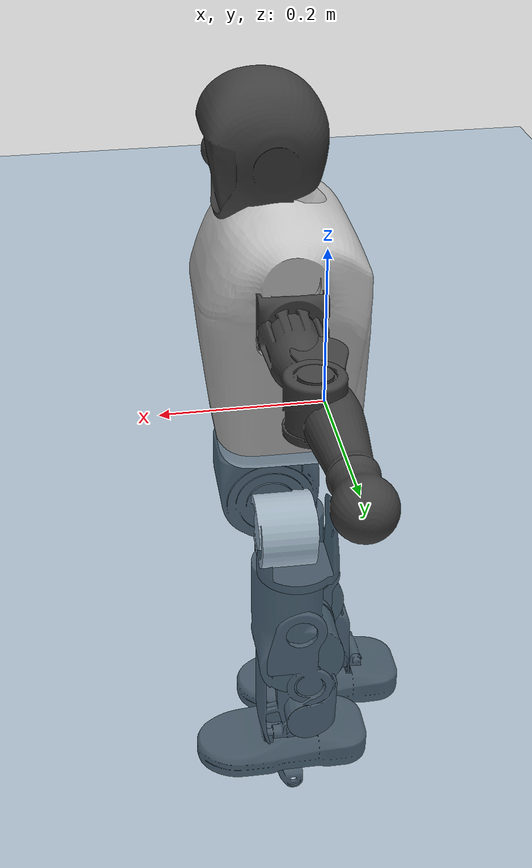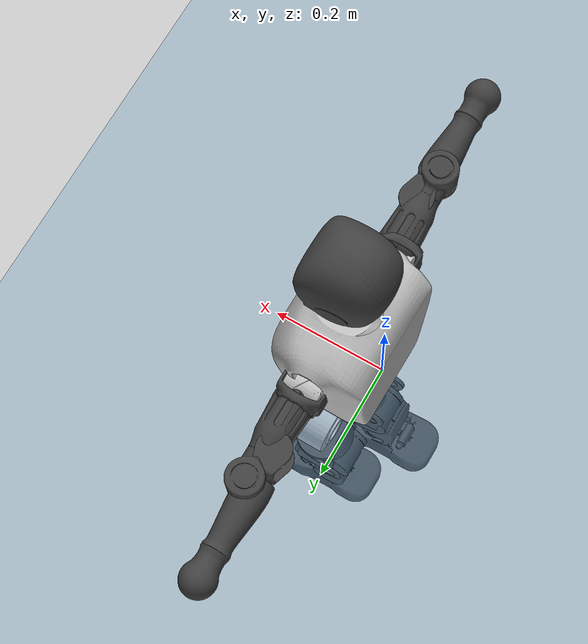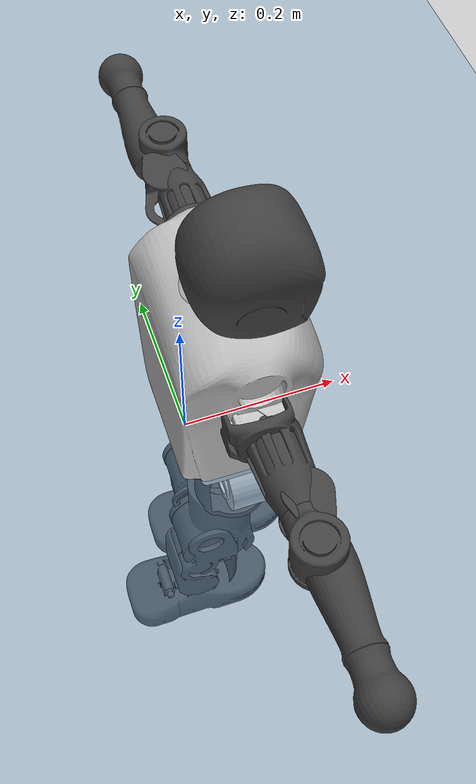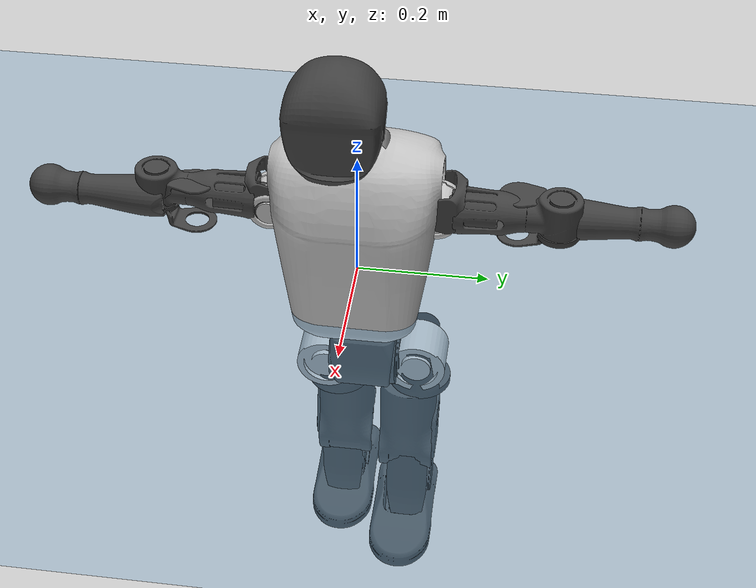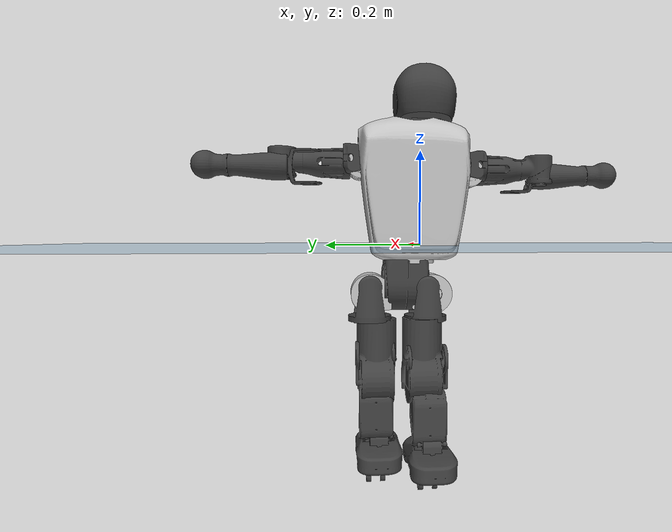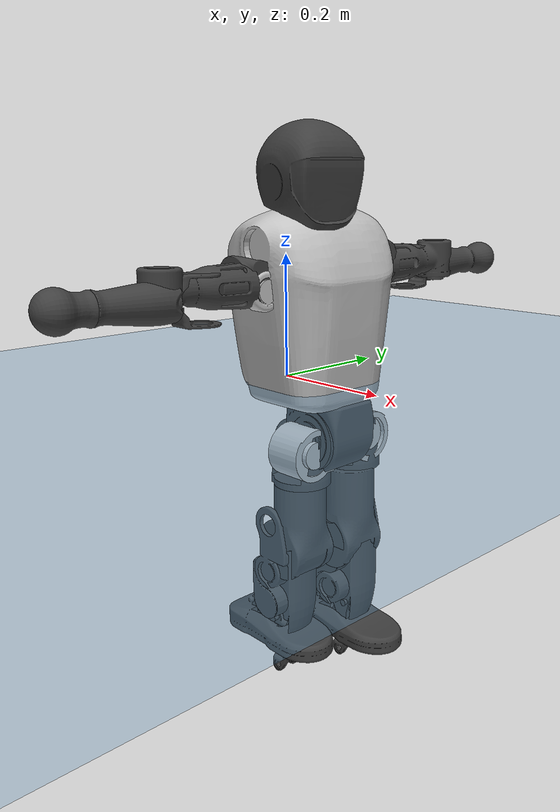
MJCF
<mujoco model="T1">
  <compiler angle="radian" assetdir="assets" balanceinertia="true" inertiafromgeom="false"/>

  <option timestep="0.005" density="1.2" viscosity="2e-05"/>

  <size nkey="1"/>

  <visual>
    <quality shadowsize="8192"/>
    <map shadowclip="0.5"/>
  </visual>

  <default>
    <default class="/">
      <joint armature="0.01" damping="0.01" frictionloss="0.1"/>
      <geom contype="0" conaffinity="0" group="1" solref="-1000 -80"/>
      <site size="0.01 0.005 0.005" group="5"/>
      <general forcelimited="true" biastype="affine" gainprm="25" biasprm="0 -25 -0.6"/>
      <default class="t1">
        <geom rgba="0.25 0.25 0.25 1"/>
        <default class="visual">
          <geom type="mesh" group="2"/>
        </default>
        <default class="collision">
          <geom group="3"/>
        </default>
        <default class="foot">
          <geom size="0.1115 0.05 0.015" type="box" condim="6" group="4" priority="1" solimp="0.015 1 0.015"/>
        </default>
        <default class="reward_collision_sphere">
          <geom group="5" rgba="1 0 0 1"/>
        </default>
      </default>
    </default>
  </default>

  <asset>
    <texture type="skybox" colorspace="auto" name="//unnamed_texture_0" builtin="gradient" rgb1="0.95 0.95 0.95" rgb2="0.95 0.95 0.95" width="100" height="600"/>
    <texture type="2d" colorspace="auto" name="texplane" builtin="checker" rgb1="0.345 0.575 0.748" rgb2="0.345 0.575 0.748" markrgb="1 1 1" width="512" height="512"/>
    <material name="MatPlane" class="/" texture="texplane" texuniform="true" texrepeat="2 2" specular="0.9"/>
    <mesh name="Trunk" class="/" file="Trunk.stl"/>
    <mesh name="H1" class="/" file="H1.stl"/>
    <mesh name="H2" class="/" file="H2.stl"/>
    <mesh name="AL1" class="/" file="AL1.stl"/>
    <mesh name="AL2" class="/" file="AL2.stl"/>
    <mesh name="AL3" class="/" file="AL3.stl"/>
    <mesh name="left_hand_link" class="/" file="left_hand_link.stl"/>
    <mesh name="AR1" class="/" file="AR1.stl"/>
    <mesh name="AR2" class="/" file="AR2.stl"/>
    <mesh name="AR3" class="/" file="AR3.stl"/>
    <mesh name="right_hand_link" class="/" file="right_hand_link.stl"/>
    <mesh name="Waist" class="/" file="Waist.stl"/>
    <mesh name="Hip_Pitch_Left" class="/" file="Hip_Pitch_Left.stl"/>
    <mesh name="Hip_Roll_Left" class="/" file="Hip_Roll_Left.stl"/>
    <mesh name="Hip_Yaw_Left" class="/" file="Hip_Yaw_Left.stl"/>
    <mesh name="Shank_Left" class="/" file="Shank_Left.stl"/>
    <mesh name="Ankle_Cross_Left" class="/" file="Ankle_Cross_Left.stl"/>
    <mesh name="left_foot_link" class="/" file="left_foot_link.stl"/>
    <mesh name="Hip_Pitch_Right" class="/" file="Hip_Pitch_Right.stl"/>
    <mesh name="Hip_Roll_Right" class="/" file="Hip_Roll_Right.stl"/>
    <mesh name="Hip_Yaw_Right" class="/" file="Hip_Yaw_Right.stl"/>
    <mesh name="Shank_Right" class="/" file="Shank_Right.stl"/>
    <mesh name="Ankle_Cross_Right" class="/" file="Ankle_Cross_Right.stl"/>
    <mesh name="right_foot_link" class="/" file="right_foot_link.stl"/>
  </asset>

  <worldbody>
    <geom name="floor" class="/" size="100 100 0.125" type="plane" group="0" material="MatPlane"/>
    <light name="toplight_shadow" class="/" pos="0 0 5" dir="0.0990148 0.0990148 -0.990148" type="directional" ambient="0.04 0.04 0.04" diffuse="0.55 0.55 0.55" specular="0.12 0.12 0.12"/>
    <light name="toplight_fill" class="/" pos="0 0 5" dir="0.0990148 0.0990148 -0.990148" type="directional" castshadow="false" ambient="0.04 0.04 0.04" diffuse="0.3 0.3 0.3" specular="0.08 0.08 0.08"/>
    <body name="trunk" childclass="t1" pos="0.0026331 0.00974469 0.00177452" quat="0.99997 0.00357358 -0.00340726 -0.00600023">
      <inertial pos="0.0669811 0.0134119 0.0841499" quat="0.999747 0.00966475 -0.0199543 0.0038396" mass="6.4405" diaginertia="0.0857829 0.0119634 0.0118469"/>
      <joint name="//unnamed_joint_0" type="free" armature="0" damping="0" frictionloss="0"/>
      <geom name="//unnamed_geom_1" class="visual" rgba="0.76 0.76 0.76 1" mesh="Trunk"/>
      <geom name="//unnamed_geom_2" class="collision" size="0.0592901 0.0790535 0.11858" pos="0.0588676 0 0.0854175" type="box"/>
      <geom name="//unnamed_geom_3" class="reward_collision_sphere" size="0.0909115" pos="0.0588676 0 0.0711812"/>
      <geom name="//unnamed_geom_4" class="reward_collision_sphere" size="0.011858" pos="0.0588676 0.0576865 0"/>
      <geom name="//unnamed_geom_5" class="reward_collision_sphere" size="0.011858" pos="0.0588676 -0.0576865 0"/>
      <geom name="//unnamed_geom_6" class="reward_collision_sphere" size="0.011858" pos="0.0588676 0.0726171 0.128126"/>
      <geom name="//unnamed_geom_7" class="reward_collision_sphere" size="0.011858" pos="0.0588676 -0.0726171 0.128126"/>
      <site name="imu" pos="-0.0600185 -0.0298378 0.0601721" size="0.00790535"/>
      <camera name="track" pos="0 -1.35733 0" quat="0.707107 0.707107 0 0" mode="trackcom"/>
      <camera name="ego_camera" pos="0.119698 0 0.298961" quat="-0.5 -0.5 0.5 0.5"/>
      <body name="H1" pos="0.0692297 -0.00946911 0.1664" quat="0.999991 0.00286186 0.00187229 0.00256201">
        <inertial pos="0.00977844 -0.0172849 0.031638" quat="0.786283 -0.0562252 -0.0481567 0.613416" mass="0.225799" diaginertia="0.000227571 3.53325e-05 3.82592e-05"/>
        <joint name="AAHead_yaw" pos="0 0 0" axis="-0.0747741 0.0181522 0.997035" range="-1.43535 1.67168" armature="0.0119254" damping="0" frictionloss="0.0810647"/>
        <geom name="//unnamed_geom_8" class="visual" mesh="H1"/>
        <body name="H2" pos="-0.0117574 -0.0156989 0.044438" quat="0.999997 0.00072616 -0.00012637 -0.00237903">
          <inertial pos="0.00784756 -0.0140035 0.0722084" quat="0.990255 0.0979718 -0.0519457 -0.0842502" mass="0.322827" diaginertia="0.00158215 0.000263225 0.00032807"/>
          <joint name="Head_pitch" pos="0 0 0" axis="-0.0225835 -0.999083 0.0363761" range="-1.17792 0.355731" armature="0.0141241" damping="0" frictionloss="0.00957203"/>
          <geom name="//unnamed_geom_9" class="visual" mesh="H2"/>
          <geom name="//unnamed_geom_10" class="collision" size="0.0632428" pos="0.00981127 0 0.0782993"/>
          <geom name="//unnamed_geom_11" class="reward_collision_sphere" size="0.0711481" pos="0.0196225 0 0.0711812"/>
        </body>
      </body>
      <body name="AL1" pos="0.0653511 0.0691192 0.172013" quat="1 0.00012444 0.000391961 0.000108315">
        <inertial pos="0.0152275 0.0266649 0.00561825" quat="0.494415 0.508683 -0.508687 0.487886" mass="0.283344" diaginertia="0.00129883 0.000197306 6.58743e-05"/>
        <joint name="Left_Shoulder_Pitch" pos="0 0 0" axis="-0.0793402 0.996811 -0.00856123" range="-3.32675 1.41715" armature="0.00986926" damping="0" frictionloss="0.0743752"/>
        <geom name="//unnamed_geom_12" class="visual" rgba="0.76 0.76 0.76 1" mesh="AL1"/>
        <body name="AL2" pos="-0.00394622 0.0291265 0.0120954" quat="1 0.000152821 -0.00018825 -7.06794e-05">
          <inertial pos="-0.00613725 0.0356356 0.0138605" quat="0.506742 0.552705 -0.464575 0.471062" mass="0.0694282" diaginertia="0.000356617 4.91711e-05 3.09831e-05"/>
          <joint name="Left_Shoulder_Roll" pos="0 0 0" axis="-0.998852 0.0326606 -0.0350394" range="-1.52701 1.65145" armature="0.00778869" damping="0.00184818" frictionloss="0.0834435"/>
          <geom name="//unnamed_geom_13" class="visual" mesh="AL2"/>
          <body name="AL3" pos="0.00466765 0.0411573 -0.00855937" quat="0.999999 0.00123924 -8.72809e-06 3.06073e-05">
            <inertial pos="0.0106121 0.0574854 -0.00415223" quat="0.667014 0.742542 0.054311 0.0278183" mass="0.527957" diaginertia="0.0109699 0.00196041 0.000147293"/>
            <joint name="Left_Elbow_Pitch" pos="0 0 0" axis="-0.00294161 -0.999876 0.0155001" range="-2.12491 2.36611" armature="0.00805775" damping="0" frictionloss="0.0140397"/>
            <geom name="//unnamed_geom_14" class="visual" mesh="AL3"/>
            <geom name="//unnamed_geom_15" class="collision" size="0.023716 0.0592901" pos="0 0.0339332 0" quat="0.707105 0.707108 0 0" type="cylinder"/>
            <geom name="//unnamed_geom_16" class="reward_collision_sphere" size="0.0284592"/>
            <body name="left_hand_link" pos="-0.0144993 0.0883798 -0.0113875" quat="0.999997 0.000463771 0.00202118 0.00157235">
              <inertial pos="-0.0147576 0.0862859 0.0145756" quat="0.709695 0.703537 0.0242554 0.0279241" mass="0.158005" diaginertia="0.00731909 0.00108569 3.26571e-05"/>
              <joint name="Left_Elbow_Yaw" pos="0 0 0" axis="0.0083248 -0.0155986 0.999844" stiffness="0.0460807" range="-2.44866 0.121714" armature="0.00291934" damping="0" frictionloss="0.0803884"/>
              <geom name="//unnamed_geom_17" class="visual" mesh="left_hand_link"/>
              <geom name="//unnamed_geom_18" class="collision" size="0.023716 0.0691718" pos="0 0.0882264 0" quat="0.707105 0.707108 0 0" type="cylinder"/>
              <geom name="//unnamed_geom_19" class="reward_collision_sphere" size="0.0395267"/>
              <geom name="//unnamed_geom_20" class="reward_collision_sphere" size="0.0276687" pos="0 0.0746531 0"/>
              <geom name="//unnamed_geom_21" class="reward_collision_sphere" size="0.0276687" pos="0 0.145913 0"/>
            </body>
          </body>
        </body>
      </body>
      <body name="AR1" pos="0.0548403 -0.0769139 0.156301" quat="0.999959 -0.00576426 0.00427862 0.00545043">
        <inertial pos="-0.000221005 -0.0219542 -0.00888731" quat="0.503958 0.502682 -0.500159 0.493131" mass="0.209913" diaginertia="0.00115398 0.000155165 4.17044e-05"/>
        <joint name="Right_Shoulder_Pitch" pos="0 0 0" axis="0.0227481 -0.999489 -0.0224695" range="-1.44764 3.2915" armature="0.0108683" damping="0.0101688" frictionloss="0.114609"/>
        <geom name="//unnamed_geom_22" class="visual" rgba="0.76 0.76 0.76 1" mesh="AR1"/>
        <body name="AR2" pos="-0.00761565 -0.0265616 0.0158481" quat="0.999977 -0.00679428 1.55814e-05 0.000673939">
          <inertial pos="0.0120309 -0.0337868 0.00717146" quat="0.472508 0.526859 -0.527599 0.469889" mass="0.0905571" diaginertia="0.000415866 4.99984e-05 3.75586e-05"/>
          <joint name="Right_Shoulder_Roll" pos="0 0 0" axis="-0.998327 0.0256853 -0.0517937" stiffness="0.0577505" range="-1.55469 1.76099" armature="0.00783136" damping="0.0756915" frictionloss="0.0961427"/>
          <geom name="//unnamed_geom_23" class="visual" mesh="AR2"/>
          <body name="AR3" pos="0.0109594 -0.0399178 -0.00766098" quat="0.999973 -0.00165034 -0.00639096 -0.00311701">
            <inertial pos="-0.0175228 -0.0605501 -0.00854589" quat="0.709763 0.703943 -0.0235191 -0.0121426" mass="0.475356" diaginertia="0.00849646 0.00160235 0.000100718"/>
            <joint name="Right_Elbow_Pitch" pos="0 0 0" axis="-0.0149998 0.998666 -0.0494117" stiffness="0.0250997" range="-2.10771 2.62859" armature="0.00619622" damping="0" frictionloss="0.0410456"/>
            <geom name="//unnamed_geom_24" class="visual" mesh="AR3"/>
            <geom name="//unnamed_geom_25" class="collision" size="0.023716 0.0592901" pos="0 -0.0339332 0" quat="0.707105 0.707108 0 0" type="cylinder"/>
            <geom name="//unnamed_geom_26" class="reward_collision_sphere" size="0.0284592"/>
            <body name="right_hand_link" pos="0.009641 -0.0883808 -0.0142369" quat="0.999977 -0.0022014 0.00199066 -0.0061544">
              <inertial pos="-0.0164911 -0.0819873 0.015166" quat="0.704589 0.709605 -0.00333575 -0.00196965" mass="0.179224" diaginertia="0.011007 0.00162424 3.83828e-05"/>
              <joint name="Right_Elbow_Yaw" pos="0 0 0" axis="0.00354128 -0.00562445 0.999978" stiffness="0.0264351" range="-0.0482045 2.7312" armature="0.0106643" damping="0" frictionloss="0.07796"/>
              <geom name="//unnamed_geom_27" class="visual" mesh="right_hand_link"/>
              <geom name="//unnamed_geom_28" class="collision" size="0.023716 0.0691718" pos="0 -0.0882264 0" quat="0.707105 0.707108 0 0" type="cylinder"/>
              <geom name="//unnamed_geom_29" class="reward_collision_sphere" size="0.0395267"/>
              <geom name="//unnamed_geom_30" class="reward_collision_sphere" size="0.0276687" pos="0 -0.0746531 0"/>
              <geom name="//unnamed_geom_31" class="reward_collision_sphere" size="0.0276687" pos="0 -0.145913 0"/>
            </body>
          </body>
        </body>
      </body>
      <body name="Waist" pos="0.0731867 0.0148071 -0.0921212" quat="1 0.00062307 -0.000252504 0.0005307">
        <inertial pos="-0.00366055 -0.0133424 0.00987776" quat="0.975047 0.047689 -0.215967 0.0191697" mass="1.70209" diaginertia="0.00604029 0.000980755 0.00114572"/>
        <joint name="Waist" pos="0 0 0" axis="0.0394892 0.0017944 0.999218" stiffness="0.0438788" range="-1.389 1.73931" armature="0.00693796" damping="0.0914368" frictionloss="0.0369209"/>
        <geom name="//unnamed_geom_32" class="visual" mesh="Waist"/>
        <body name="Hip_Pitch_Left" pos="-0.0106627 0.0789929 0.00121701" quat="1 -5.31425e-06 -0.000600038 -0.000299006">
          <inertial pos="0.00942154 -0.00917002 0.00205935" quat="0.96723 0.251233 0.0335182 0.0149979" mass="0.538842" diaginertia="0.00184143 0.000236798 0.000254159"/>
          <joint name="Left_Hip_Pitch" pos="0 0 0" axis="0.0417121 0.999089 -0.0090352" range="-1.90246 1.28296" armature="0.0109198" damping="0.0687223" frictionloss="0.0715785"/>
          <geom name="//unnamed_geom_33" class="visual" rgba="0.76 0.76 0.76 1" mesh="Hip_Pitch_Left"/>
          <body name="Hip_Roll_Left" pos="-0.0150418 0.00253523 -0.00305966" quat="0.999998 -0.00189155 0.000796967 0.000602161">
            <inertial pos="0.00697395 -0.000176212 -0.0243942" quat="0.716861 0.00528391 0.00574132 0.697173" mass="0.141483" diaginertia="0.0010793 0.000210062 9.15761e-05"/>
            <joint name="Left_Hip_Roll" pos="0 0 0" axis="-0.999 0.0141528 -0.0424058" stiffness="0.0751709" range="-1.39447 -0.109929" armature="0.00657296" damping="0" frictionloss="0.0631423"/>
            <geom name="//unnamed_geom_34" class="visual" mesh="Hip_Roll_Left"/>
            <geom name="//unnamed_geom_35" class="reward_collision_sphere" size="0.0434794"/>
            <body name="Hip_Yaw_Left" pos="0.00720246 -0.0159708 -0.0745578" quat="1 -0.000448241 -0.000260769 0.000142293">
              <inertial pos="0.0032659 0.00233824 -0.071436" quat="0.707683 0.0306138 -0.00514919 0.705848" mass="1.09604" diaginertia="0.0186333 0.00385285 0.00036588"/>
              <joint name="Left_Hip_Yaw" pos="0 0 0" axis="-0.0093957 0.000255892 -0.999956" stiffness="0.00428562" range="-0.912342 0.652437" armature="0.00317253" damping="0.101495" frictionloss="0.0759316"/>
              <geom name="//unnamed_geom_36" class="visual" mesh="Hip_Yaw_Left"/>
              <geom name="//unnamed_geom_37" class="collision" size="0.0395267 0.0632428" type="cylinder"/>
              <body name="Shank_Left" pos="-0.0110266 0.00430911 -0.0805487" quat="0.999989 -0.00303368 -0.00340284 0.000948897">
                <inertial pos="-0.00546794 0.00301795 -0.0746134" quat="0.996499 -0.0167535 -0.0451557 0.0683431" mass="0.793883" diaginertia="0.0296473 0.00623943 0.000442571"/>
                <joint name="Left_Knee_Pitch" pos="0 0 0" axis="0.00426931 0.999984 0.00362518" range="-0.211809 2.3337" armature="0.00845707" damping="0.0385329" frictionloss="0.106797"/>
                <geom name="//unnamed_geom_38" class="visual" mesh="Shank_Left"/>
                <geom name="//unnamed_geom_39" class="collision" size="0.0395267 0.0592901" pos="0 0 -0.0854175" type="cylinder"/>
                <geom name="//unnamed_geom_40" class="reward_collision_sphere" size="0.0513848"/>
                <body name="Ankle_Cross_Left" pos="0.00644144 0.00511959 -0.186283" quat="0.999995 -0.000682959 0.00100931 0.00280313">
                  <inertial pos="0.0119052 -0.015546 -0.00619246" quat="0.440781 0.553286 0.549416 0.444667" mass="0.0413915" diaginertia="2.28522e-05 4.39912e-06 2.0013e-06"/>
                  <joint name="Left_Ankle_Pitch" pos="0 0 0" axis="0.00205605 0.997651 0.0684767" range="-0.642283 0.229785" armature="0.0135022" damping="0" frictionloss="0.0372228"/>
                  <geom name="//unnamed_geom_41" class="visual" mesh="Ankle_Cross_Left"/>
                  <body name="left_foot_link" pos="-0.00174842 -0.0109623 -0.0219415" quat="0.999966 0.00534643 0.0031026 -0.00554341">
                    <inertial pos="0.0152455 -0.000783517 0.00164968" quat="-0.0132714 0.658249 0.00666731 0.752654" mass="0.400415" diaginertia="0.00221146 0.000330044 0.000345196"/>
                    <joint name="Left_Ankle_Roll" pos="0 0 0" axis="-0.999998 0.0017685 0.00079146" stiffness="0.0717612" range="-0.142135 0.753415" armature="0.00333046" damping="0.0133531" frictionloss="0.139721"/>
                    <geom name="//unnamed_geom_42" class="visual" mesh="left_foot_link"/>
                    <geom name="left_foot" class="foot" size="0.0978932 0.0565771 0.0128337" pos="0.00981127 0 -0.0106772"/>
                    <geom name="//unnamed_geom_44" class="reward_collision_sphere" size="0.0411078" pos="0.00981127 0 -0.0106772"/>
                    <geom name="//unnamed_geom_45" class="reward_collision_sphere" size="0.023716" pos="0.0932071 -0.0156093 -0.0106772"/>
                    <geom name="//unnamed_geom_46" class="reward_collision_sphere" size="0.023716" pos="-0.0686789 -0.0156093 -0.0106772"/>
                    <site name="left_foot" class="foot" pos="0.00981127 0 -0.0106772" size="0.00790535"/>
                  </body>
                </body>
              </body>
            </body>
          </body>
        </body>
        <body name="Hip_Pitch_Right" pos="-0.00371837 -0.0593619 -4.15625e-05" quat="0.999974 0.00378513 0.00396303 0.00475408">
          <inertial pos="-0.00829085 0.017948 -0.0238996" quat="0.975085 -0.219285 0.0328129 -0.00683007" mass="0.494451" diaginertia="0.00152472 0.000161619 0.000204566"/>
          <joint name="Right_Hip_Pitch" pos="0 0 0" axis="-0.000582802 -0.999996 -0.00262925" stiffness="0.0172221" range="-1.40917 1.71768" armature="0.00264929" damping="0" frictionloss="0.113565"/>
          <geom name="//unnamed_geom_47" class="visual" rgba="0.76 0.76 0.76 1" mesh="Hip_Pitch_Right"/>
          <body name="Hip_Roll_Right" pos="-0.0162593 0.014283 -0.00328754" quat="0.999997 -0.00107366 -0.00141429 -0.00146638">
            <inertial pos="-0.00645133 -0.00815503 -0.050577" quat="0.70703 -0.0198343 -0.00571907 0.706883" mass="0.1329" diaginertia="0.00138114 0.000158815 8.31972e-05"/>
            <joint name="Right_Hip_Roll" pos="0 0 0" axis="-0.999018 0.0316241 -0.0310167" range="-0.200623 1.9061" armature="0.00649444" damping="0.0886656" frictionloss="0.142763"/>
            <geom name="//unnamed_geom_48" class="visual" mesh="Hip_Roll_Right"/>
            <geom name="//unnamed_geom_49" class="reward_collision_sphere" size="0.0434794"/>
            <body name="Hip_Yaw_Right" pos="-0.0157684 0.00943801 -0.0689886" quat="0.999982 -0.00522751 0.00158379 0.00262381">
              <inertial pos="-0.00227177 0.0116124 -0.0752081" quat="0.7345 -0.039028 -0.112627 0.668058" mass="0.961531" diaginertia="0.0283876 0.00317217 0.000573415"/>
              <joint name="Right_Hip_Yaw" pos="0 0 0" axis="-0.0452205 -0.0735373 -0.996267" range="-0.985733 1.03607" armature="0.0136608" damping="0.0217856" frictionloss="0.064976"/>
              <geom name="//unnamed_geom_50" class="visual" mesh="Hip_Yaw_Right"/>
              <geom name="//unnamed_geom_51" class="collision" size="0.0395267 0.0632428" type="cylinder"/>
              <body name="Shank_Right" pos="-0.0297255 -0.00615372 -0.0891608" quat="0.999985 -0.0034308 0.00407628 0.00138669">
                <inertial pos="-0.0156685 -0.00248205 -0.0932428" quat="0.993597 0.0318605 -0.0866797 -0.065094" mass="1.08703" diaginertia="0.0294622 0.00563567 0.000342015"/>
                <joint name="Right_Knee_Pitch" pos="0 0 0" axis="-0.0144649 -0.999892 -0.00259503" stiffness="0.0820055" range="-2.32734 -0.233942" armature="0.00800937" damping="0" frictionloss="0.0910076"/>
                <geom name="//unnamed_geom_52" class="visual" mesh="Shank_Right"/>
                <geom name="//unnamed_geom_53" class="collision" size="0.0395267 0.0592901" pos="0 0 -0.0854175" type="cylinder"/>
                <geom name="//unnamed_geom_54" class="reward_collision_sphere" size="0.0513848"/>
                <body name="Ankle_Cross_Right" pos="-0.00723976 -0.00472361 -0.187737" quat="0.999974 0.00589653 -0.000295768 -0.00407288">
                  <inertial pos="-0.000123663 -0.0133198 -0.00436068" quat="0.440603 0.551004 0.551238 0.445422" mass="0.0356776" diaginertia="3.2126e-05 3.68335e-06 2.39705e-06"/>
                  <joint name="Right_Ankle_Pitch" pos="0 0 0" axis="0.0266791 -0.998216 0.0534214" range="0.00328925 0.904128" armature="0.00753301" damping="0.00396548" frictionloss="0.0978448"/>
                  <geom name="//unnamed_geom_55" class="visual" mesh="Ankle_Cross_Right"/>
                  <body name="right_foot_link" pos="-0.0131429 0.00344734 -0.0142848" quat="0.999999 0.000739252 2.54582e-05 0.000716226">
                    <inertial pos="-0.00132145 -0.0133042 -0.0066468" quat="0.0143279 0.593908 0.0316447 0.803783" mass="0.21801" diaginertia="0.002192 0.000284021 0.000299557"/>
                    <joint name="Right_Ankle_Roll" pos="0 0 0" axis="-0.999488 -0.000611276 0.0319973" range="-0.336851 0.649903" armature="0.0059952" damping="0.00624567" frictionloss="0.144357"/>
                    <geom name="//unnamed_geom_56" class="visual" mesh="right_foot_link"/>
                    <geom name="right_foot" class="foot" size="0.134869 0.0290832 0.0123615" pos="0.00981127 0 -0.0106772"/>
                    <geom name="//unnamed_geom_58" class="reward_collision_sphere" size="0.0316214"/>
                    <geom name="//unnamed_geom_59" class="reward_collision_sphere" size="0.023716" pos="0.00981127 0 -0.0106772"/>
                    <geom name="//unnamed_geom_60" class="reward_collision_sphere" size="0.023716" pos="0.0932071 0.0156093 -0.0106772"/>
                    <geom name="//unnamed_geom_61" class="reward_collision_sphere" size="0.023716" pos="-0.0686789 0.0156093 -0.0106772"/>
                    <site name="right_foot" class="foot" pos="0.00981127 0 -0.0106772" size="0.00790535"/>
                  </body>
                </body>
              </body>
            </body>
          </body>
        </body>
      </body>
    </body>
  </worldbody>

  <contact>
    <pair class="/" geom1="floor" geom2="left_foot" name="//unnamed_contact_0"/>
    <pair class="/" geom1="floor" geom2="right_foot" name="//unnamed_contact_1"/>
  </contact>

  <actuator>
    <general name="AAHead_yaw" class="/" joint="AAHead_yaw" forcerange="-7.03837 7.03837" gainprm="28.0663" biasprm="0 -28.0663 -0.35097"/>
    <general name="Head_pitch" class="/" joint="Head_pitch" forcerange="-4.03288 4.03288" gainprm="28.0663" biasprm="0 -28.0663 -0.35097"/>
    <general name="Left_Shoulder_Pitch" class="/" joint="Left_Shoulder_Pitch" forcerange="-23.6822 23.6822" gainprm="28.0663" biasprm="0 -28.0663 -0.35097"/>
    <general name="Left_Shoulder_Roll" class="/" joint="Left_Shoulder_Roll" forcerange="-14.4637 14.4637" gainprm="28.0663" biasprm="0 -28.0663 -0.35097"/>
    <general name="Left_Elbow_Pitch" class="/" joint="Left_Elbow_Pitch" forcerange="-19.3974 19.3974" gainprm="28.0663" biasprm="0 -28.0663 -0.35097"/>
    <general name="Left_Elbow_Yaw" class="/" joint="Left_Elbow_Yaw" forcerange="-15.3207 15.3207" gainprm="28.0663" biasprm="0 -28.0663 -0.35097"/>
    <general name="Right_Shoulder_Pitch" class="/" joint="Right_Shoulder_Pitch" forcerange="-17.1398 17.1398" gainprm="28.0663" biasprm="0 -28.0663 -0.35097"/>
    <general name="Right_Shoulder_Roll" class="/" joint="Right_Shoulder_Roll" forcerange="-13.0419 13.0419" gainprm="28.0663" biasprm="0 -28.0663 -0.35097"/>
    <general name="Right_Elbow_Pitch" class="/" joint="Right_Elbow_Pitch" forcerange="-19.7672 19.7672" gainprm="28.0663" biasprm="0 -28.0663 -0.35097"/>
    <general name="Right_Elbow_Yaw" class="/" joint="Right_Elbow_Yaw" forcerange="-19.7059 19.7059" gainprm="28.0663" biasprm="0 -28.0663 -0.35097"/>
    <general name="Waist" class="/" joint="Waist" forcerange="-32.7853 32.7853" gainprm="28.0663" biasprm="0 -28.0663 -0.35097"/>
    <general name="Left_Hip_Pitch" class="/" joint="Left_Hip_Pitch" forcerange="-39.7835 39.7835" gainprm="28.0663" biasprm="0 -28.0663 -0.35097"/>
    <general name="Left_Hip_Roll" class="/" joint="Left_Hip_Roll" forcerange="-32.4733 32.4733" gainprm="28.0663" biasprm="0 -28.0663 -0.35097"/>
    <general name="Left_Hip_Yaw" class="/" joint="Left_Hip_Yaw" forcerange="-32.6392 32.6392" gainprm="28.0663" biasprm="0 -28.0663 -0.35097"/>
    <general name="Left_Knee_Pitch" class="/" joint="Left_Knee_Pitch" forcerange="-31.9667 31.9667" gainprm="28.0663" biasprm="0 -28.0663 -0.35097"/>
    <general name="Left_Ankle_Pitch" class="/" joint="Left_Ankle_Pitch" forcerange="-6.24867 6.24867" gainprm="28.0663" biasprm="0 -28.0663 -0.35097"/>
    <general name="Left_Ankle_Roll" class="/" joint="Left_Ankle_Roll" forcerange="-18.4546 18.4546" gainprm="28.0663" biasprm="0 -28.0663 -0.35097"/>
    <general name="Right_Hip_Pitch" class="/" joint="Right_Hip_Pitch" forcerange="-32.3542 32.3542" gainprm="28.0663" biasprm="0 -28.0663 -0.35097"/>
    <general name="Right_Hip_Roll" class="/" joint="Right_Hip_Roll" forcerange="-10.4316 10.4316" gainprm="28.0663" biasprm="0 -28.0663 -0.35097"/>
    <general name="Right_Hip_Yaw" class="/" joint="Right_Hip_Yaw" forcerange="-35.0995 35.0995" gainprm="28.0663" biasprm="0 -28.0663 -0.35097"/>
    <general name="Right_Knee_Pitch" class="/" joint="Right_Knee_Pitch" forcerange="-68.2216 68.2216" gainprm="28.0663" biasprm="0 -28.0663 -0.35097"/>
    <general name="Right_Ankle_Pitch" class="/" joint="Right_Ankle_Pitch" forcerange="-17.3079 17.3079" gainprm="28.0663" biasprm="0 -28.0663 -0.35097"/>
    <general name="Right_Ankle_Roll" class="/" joint="Right_Ankle_Roll" forcerange="-5.69753 5.69753" gainprm="28.0663" biasprm="0 -28.0663 -0.35097"/>
  </actuator>

  <sensor>
    <gyro site="imu" name="imu_angular_velocity"/>
    <velocimeter site="imu" name="imu_linear_velocity"/>
    <framelinvel objtype="site" objname="left_foot" name="left_foot_global_linear_velocity"/>
    <framelinvel objtype="site" objname="right_foot" name="right_foot_global_linear_velocity"/>
  </sensor>

  <keyframe>
    <key name="home" qpos="0 0 0.6385 1 0 0 0 0 0 0 1.4 0 -0.4 0 -1.4 0 0.4 0 -0.4 0 0 0.8 -0.4 0 0.4 0 0 -0.8 0.4 0"/>
  </keyframe>
</mujoco>
